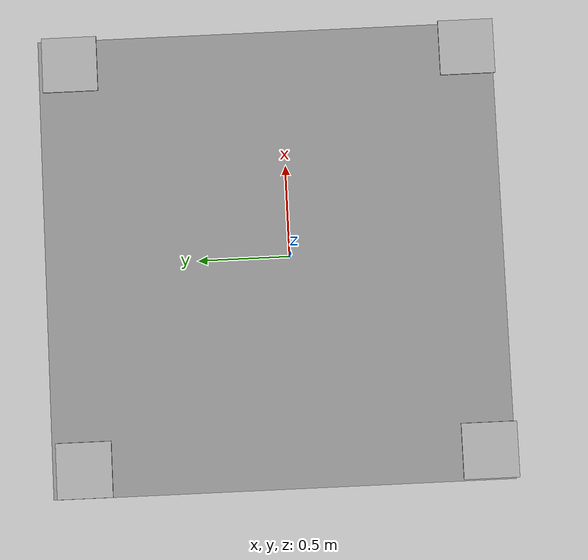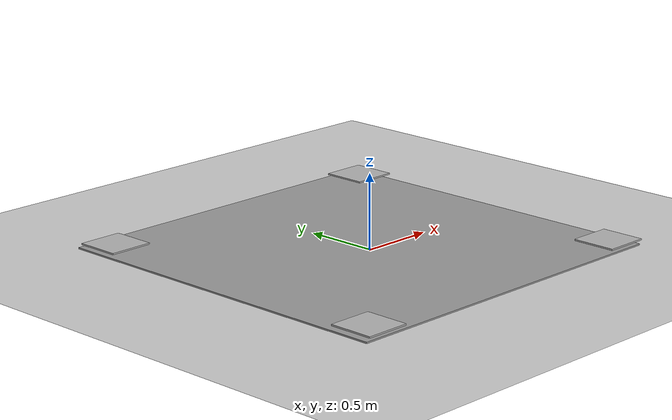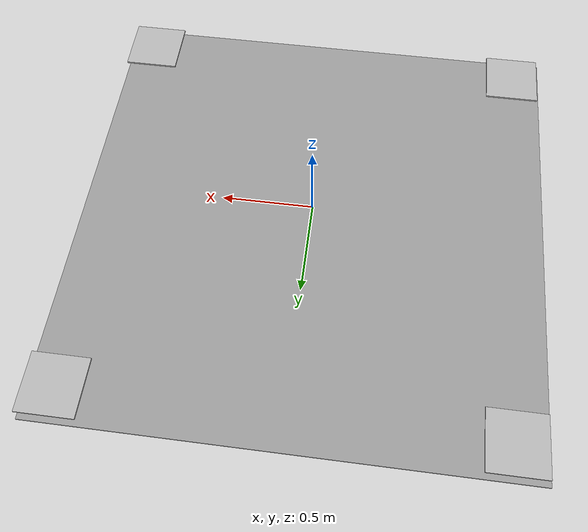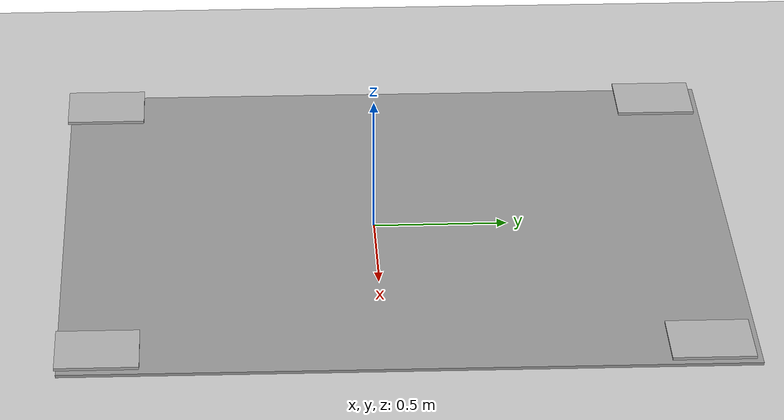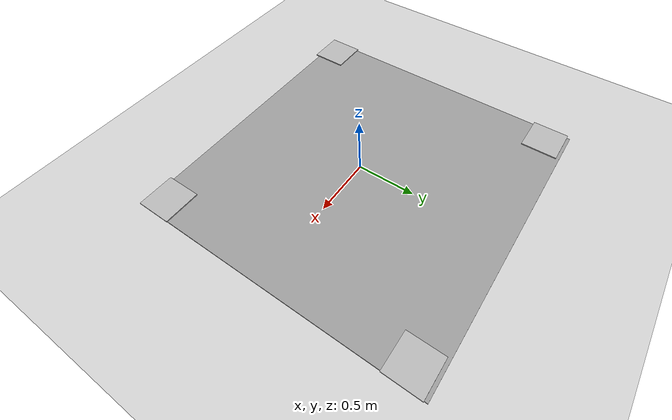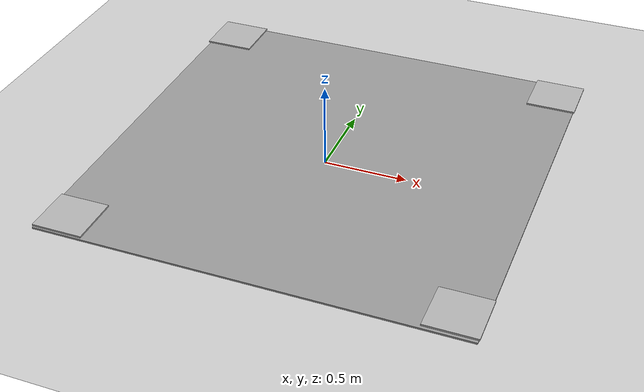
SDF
<sdf version="1.6">
 <world name="default">
  <light name="sun" type="directional">
   <pose>0 0 10 0 -0 0</pose>
   <diffuse>0.8 0.8 0.8 1</diffuse>
   <specular>0.1 0.1 0.1 1</specular>
   <attenuation>
    <range>1000</range>
    <constant>0.9</constant>
    <linear>0.01</linear>
    <quadratic>0.001</quadratic>
   </attenuation>
   <direction>-0.5 0.5 -1</direction>
  </light>
  <model name="ground_plane">
   <static>1</static>
   <link name="link">
    <collision name="collision">
     <geometry><plane><normal>0 0 1</normal><size>100 100</size></plane></geometry>
     <surface><friction><ode><mu>100</mu><mu2>50</mu2></ode></friction></surface>
    </collision>
    <visual name="visual">
     <cast_shadows>0</cast_shadows>
     <geometry><plane><normal>0 0 1</normal><size>100 100</size></plane></geometry>
     <material>
      <script><uri>file://media/materials/scripts/gazebo.material</uri><name>Gazebo/Grey</name></script>
     </material>
    </visual>
   </link>
  </model>
  <gravity>0 0 -9.8</gravity>
  <magnetic_field>6e-06 2.3e-05 -4.2e-05</magnetic_field>
  <atmosphere type="adiabatic"/>
  <physics name="default_physics" default="0" type="ode">
   <max_step_size>0.001</max_step_size>
   <real_time_factor>1</real_time_factor>
   <real_time_update_rate>1000</real_time_update_rate>
  </physics>
  <scene><ambient>0.4 0.4 0.4 1</ambient><background>0.7 0.7 0.7 1</background><shadows>1</shadows></scene>
  <spherical_coordinates>
   <surface_model>EARTH_WGS84</surface_model>
   <latitude_deg>0</latitude_deg>
   <longitude_deg>0</longitude_deg>
   <elevation>0</elevation>
   <heading_deg>0</heading_deg>
  </spherical_coordinates>
  <model name="vr_env_0">
   <link name="link">
    <pose>1.11662 0.039296 0 0 -0 0</pose>
    <inertial>
     <mass>1</mass>
     <inertia>
      <ixx>0.166667</ixx>
      <ixy>0</ixy>
      <ixz>0</ixz>
      <iyy>0.166667</iyy>
      <iyz>0</iyz>
      <izz>0.166667</izz>
     </inertia>
    </inertial>
    <visual name="visual">
     <geometry><box><size>2.5 2.5 0.01</size></box></geometry>
     <material>
      <script><name>Gazebo/Grey</name><uri>file://media/materials/scripts/gazebo.material</uri></script>
      <ambient>1 1 1 1</ambient>
      <diffuse>0.7 0.7 0.7 1</diffuse>
      <specular>0.01 0.01 0.01 1</specular>
      <emissive>0 0 0 1</emissive>
      <shader type="vertex"><normal_map>__default__</normal_map></shader>
     </material>
    </visual>
    <collision name="collision">
     <geometry><box><size>2.5 2.5 0.01</size></box></geometry>
     <surface>
      <friction>
       <ode><mu>1</mu><mu2>1</mu2><fdir1>0 0 0</fdir1><slip1>0</slip1><slip2>0</slip2></ode>
       <torsional>
        <coefficient>1</coefficient>
        <patch_radius>0</patch_radius>
        <surface_radius>0</surface_radius>
        <use_patch_radius>1</use_patch_radius>
        <ode><slip>0</slip></ode>
       </torsional>
      </friction>
      <bounce><restitution_coefficient>0</restitution_coefficient><threshold>1e+06</threshold></bounce>
      <contact>
       <collide_without_contact>0</collide_without_contact>
       <collide_without_contact_bitmask>1</collide_without_contact_bitmask>
       <collide_bitmask>1</collide_bitmask>
       <ode>
        <soft_cfm>0</soft_cfm>
        <soft_erp>0.2</soft_erp>
        <kp>1e+13</kp>
        <kd>1</kd>
        <max_vel>0.01</max_vel>
        <min_depth>0</min_depth>
       </ode>
       <bullet>
        <split_impulse>1</split_impulse>
        <split_impulse_penetration_threshold>-0.01</split_impulse_penetration_threshold>
        <soft_cfm>0</soft_cfm>
        <soft_erp>0.2</soft_erp>
        <kp>1e+13</kp>
        <kd>1</kd>
       </bullet>
      </contact>
     </surface>
    </collision>
   </link>
   <link name="link_tag1">
    <pose>0.022967 1.11381 0.031996 0 -0 0</pose>
    <inertial>
     <mass>1</mass>
     <inertia>
      <ixx>0.166667</ixx>
      <ixy>0</ixy>
      <ixz>0</ixz>
      <iyy>0.166667</iyy>
      <iyz>0</iyz>
      <izz>0.166667</izz>
     </inertia>
    </inertial>
    <visual name="visual">
     <geometry><box><size>0.3 0.3 0.01</size></box></geometry>
     <material>
      <script>
       <name>vr_localization/tag1</name>
       <uri>file:///home/cm/Workspaces/VR_localization/src/vr_localization/gazebo/materials/tag1.material</uri>
      </script>
      <ambient>1 1 1 1</ambient>
      <diffuse>0.7 0.7 0.7 1</diffuse>
      <specular>0.01 0.01 0.01 1</specular>
      <emissive>0 0 0 1</emissive>
      <shader type="vertex"><normal_map>__default__</normal_map></shader>
     </material>
    </visual>
    <collision name="collision">
     <geometry><box><size>0.3 0.3 0.01</size></box></geometry>
     <surface>
      <friction>
       <ode><mu>1</mu><mu2>1</mu2><fdir1>0 0 0</fdir1><slip1>0</slip1><slip2>0</slip2></ode>
       <torsional>
        <coefficient>1</coefficient>
        <patch_radius>0</patch_radius>
        <surface_radius>0</surface_radius>
        <use_patch_radius>1</use_patch_radius>
        <ode><slip>0</slip></ode>
       </torsional>
      </friction>
      <bounce><restitution_coefficient>0</restitution_coefficient><threshold>1e+06</threshold></bounce>
      <contact>
       <collide_without_contact>0</collide_without_contact>
       <collide_without_contact_bitmask>1</collide_without_contact_bitmask>
       <collide_bitmask>1</collide_bitmask>
       <ode>
        <soft_cfm>0</soft_cfm>
        <soft_erp>0.2</soft_erp>
        <kp>1e+13</kp>
        <kd>1</kd>
        <max_vel>0.01</max_vel>
        <min_depth>0</min_depth>
       </ode>
       <bullet>
        <split_impulse>1</split_impulse>
        <split_impulse_penetration_threshold>-0.01</split_impulse_penetration_threshold>
        <soft_cfm>0</soft_cfm>
        <soft_erp>0.2</soft_erp>
        <kp>1e+13</kp>
        <kd>1</kd>
       </bullet>
      </contact>
     </surface>
    </collision>
   </link>
   <link name="link_tag2">
    <pose>0.029284 -1.07214 0.031996 0 -0 0</pose>
    <inertial>
     <mass>1</mass>
     <inertia>
      <ixx>0.166667</ixx>
      <ixy>0</ixy>
      <ixz>0</ixz>
      <iyy>0.166667</iyy>
      <iyz>0</iyz>
      <izz>0.166667</izz>
     </inertia>
    </inertial>
    <visual name="visual">
     <geometry><box><size>0.3 0.3 0.01</size></box></geometry>
     <material>
      <script>
       <name>vr_localization/tag2</name>
       <uri>file:///home/cm/Workspaces/VR_localization/src/vr_localization/gazebo/materials/tag2.material</uri>
      </script>
      <ambient>1 1 1 1</ambient>
      <diffuse>0.7 0.7 0.7 1</diffuse>
      <specular>0.01 0.01 0.01 1</specular>
      <emissive>0 0 0 1</emissive>
      <shader type="vertex"><normal_map>__default__</normal_map></shader>
     </material>
    </visual>
    <collision name="collision">
     <geometry><box><size>0.3 0.3 0.01</size></box></geometry>
     <surface>
      <friction>
       <ode><mu>1</mu><mu2>1</mu2><fdir1>0 0 0</fdir1><slip1>0</slip1><slip2>0</slip2></ode>
       <torsional>
        <coefficient>1</coefficient>
        <patch_radius>0</patch_radius>
        <surface_radius>0</surface_radius>
        <use_patch_radius>1</use_patch_radius>
        <ode><slip>0</slip></ode>
       </torsional>
      </friction>
      <bounce><restitution_coefficient>0</restitution_coefficient><threshold>1e+06</threshold></bounce>
      <contact>
       <collide_without_contact>0</collide_without_contact>
       <collide_without_contact_bitmask>1</collide_without_contact_bitmask>
       <collide_bitmask>1</collide_bitmask>
       <ode>
        <soft_cfm>0</soft_cfm>
        <soft_erp>0.2</soft_erp>
        <kp>1e+13</kp>
        <kd>1</kd>
        <max_vel>0.01</max_vel>
        <min_depth>0</min_depth>
       </ode>
       <bullet>
        <split_impulse>1</split_impulse>
        <split_impulse_penetration_threshold>-0.01</split_impulse_penetration_threshold>
        <soft_cfm>0</soft_cfm>
        <soft_erp>0.2</soft_erp>
        <kp>1e+13</kp>
        <kd>1</kd>
       </bullet>
      </contact>
     </surface>
    </collision>
   </link>
   <link name="link_tag3">
    <pose>2.22958 1.11325 0.031996 0 -0 0</pose>
    <inertial>
     <mass>1</mass>
     <inertia>
      <ixx>0.166667</ixx>
      <ixy>0</ixy>
      <ixz>0</ixz>
      <iyy>0.166667</iyy>
      <iyz>0</iyz>
      <izz>0.166667</izz>
     </inertia>
    </inertial>
    <visual name="visual">
     <geometry><box><size>0.3 0.3 0.01</size></box></geometry>
     <material>
      <script>
       <name>vr_localization/tag3</name>
       <uri>file:///home/cm/Workspaces/VR_localization/src/vr_localization/gazebo/materials/tag3.material</uri>
      </script>
      <ambient>1 1 1 1</ambient>
      <diffuse>0.7 0.7 0.7 1</diffuse>
      <specular>0.01 0.01 0.01 1</specular>
      <emissive>0 0 0 1</emissive>
      <shader type="vertex"><normal_map>__default__</normal_map></shader>
     </material>
    </visual>
    <collision name="collision">
     <geometry><box><size>0.3 0.3 0.01</size></box></geometry>
     <surface>
      <friction>
       <ode><mu>1</mu><mu2>1</mu2><fdir1>0 0 0</fdir1><slip1>0</slip1><slip2>0</slip2></ode>
       <torsional>
        <coefficient>1</coefficient>
        <patch_radius>0</patch_radius>
        <surface_radius>0</surface_radius>
        <use_patch_radius>1</use_patch_radius>
        <ode><slip>0</slip></ode>
       </torsional>
      </friction>
      <bounce><restitution_coefficient>0</restitution_coefficient><threshold>1e+06</threshold></bounce>
      <contact>
       <collide_without_contact>0</collide_without_contact>
       <collide_without_contact_bitmask>1</collide_without_contact_bitmask>
       <collide_bitmask>1</collide_bitmask>
       <ode>
        <soft_cfm>0</soft_cfm>
        <soft_erp>0.2</soft_erp>
        <kp>1e+13</kp>
        <kd>1</kd>
        <max_vel>0.01</max_vel>
        <min_depth>0</min_depth>
       </ode>
       <bullet>
        <split_impulse>1</split_impulse>
        <split_impulse_penetration_threshold>-0.01</split_impulse_penetration_threshold>
        <soft_cfm>0</soft_cfm>
        <soft_erp>0.2</soft_erp>
        <kp>1e+13</kp>
        <kd>1</kd>
       </bullet>
      </contact>
     </surface>
    </collision>
   </link>
   <link name="link_tag4">
    <pose>2.22743 -1.06576 0.031996 0 -0 0</pose>
    <inertial>
     <mass>1</mass>
     <inertia>
      <ixx>0.166667</ixx>
      <ixy>0</ixy>
      <ixz>0</ixz>
      <iyy>0.166667</iyy>
      <iyz>0</iyz>
      <izz>0.166667</izz>
     </inertia>
    </inertial>
    <visual name="visual">
     <geometry><box><size>0.3 0.3 0.01</size></box></geometry>
     <material>
      <script>
       <name>vr_localization/tag4</name>
       <uri>file:///home/cm/Workspaces/VR_localization/src/vr_localization/gazebo/materials/tag4.material</uri>
      </script>
      <ambient>1 1 1 1</ambient>
      <diffuse>0.7 0.7 0.7 1</diffuse>
      <specular>0.01 0.01 0.01 1</specular>
      <emissive>0 0 0 1</emissive>
      <shader type="vertex"><normal_map>__default__</normal_map></shader>
     </material>
    </visual>
    <collision name="collision">
     <geometry><box><size>0.3 0.3 0.01</size></box></geometry>
     <surface>
      <friction>
       <ode><mu>1</mu><mu2>1</mu2><fdir1>0 0 0</fdir1><slip1>0</slip1><slip2>0</slip2></ode>
       <torsional>
        <coefficient>1</coefficient>
        <patch_radius>0</patch_radius>
        <surface_radius>0</surface_radius>
        <use_patch_radius>1</use_patch_radius>
        <ode><slip>0</slip></ode>
       </torsional>
      </friction>
      <bounce><restitution_coefficient>0</restitution_coefficient><threshold>1e+06</threshold></bounce>
      <contact>
       <collide_without_contact>0</collide_without_contact>
       <collide_without_contact_bitmask>1</collide_without_contact_bitmask>
       <collide_bitmask>1</collide_bitmask>
       <ode>
        <soft_cfm>0</soft_cfm>
        <soft_erp>0.2</soft_erp>
        <kp>1e+13</kp>
        <kd>1</kd>
        <max_vel>0.01</max_vel>
        <min_depth>0</min_depth>
       </ode>
       <bullet>
        <split_impulse>1</split_impulse>
        <split_impulse_penetration_threshold>-0.01</split_impulse_penetration_threshold>
        <soft_cfm>0</soft_cfm>
        <soft_erp>0.2</soft_erp>
        <kp>1e+13</kp>
        <kd>1</kd>
       </bullet>
      </contact>
     </surface>
    </collision>
   </link>
   <joint name="link_JOINT_0" type="fixed">
    <parent>link</parent>
    <child>link_tag1</child>
    <physics>
     <ode><limit><cfm>0</cfm><erp>0.2</erp></limit><suspension><cfm>0</cfm><erp>0.2</erp></suspension></ode>
    </physics>
   </joint>
   <joint name="link_JOINT_1" type="fixed">
    <parent>link</parent>
    <child>link_tag2</child>
    <physics>
     <ode><limit><cfm>0</cfm><erp>0.2</erp></limit><suspension><cfm>0</cfm><erp>0.2</erp></suspension></ode>
    </physics>
   </joint>
   <joint name="link_JOINT_2" type="fixed">
    <parent>link</parent>
    <child>link_tag3</child>
    <physics>
     <ode><limit><cfm>0</cfm><erp>0.2</erp></limit><suspension><cfm>0</cfm><erp>0.2</erp></suspension></ode>
    </physics>
   </joint>
   <joint name="link_JOINT_3" type="fixed">
    <parent>link</parent>
    <child>link_tag4</child>
    <physics>
     <ode><limit><cfm>0</cfm><erp>0.2</erp></limit><suspension><cfm>0</cfm><erp>0.2</erp></suspension></ode>
    </physics>
   </joint>
   <static>0</static>
   <pose>-1.11945 0.043782 0.004996 3e-06 0 -5.8e-05</pose>
  </model>
 </world>
</sdf>
